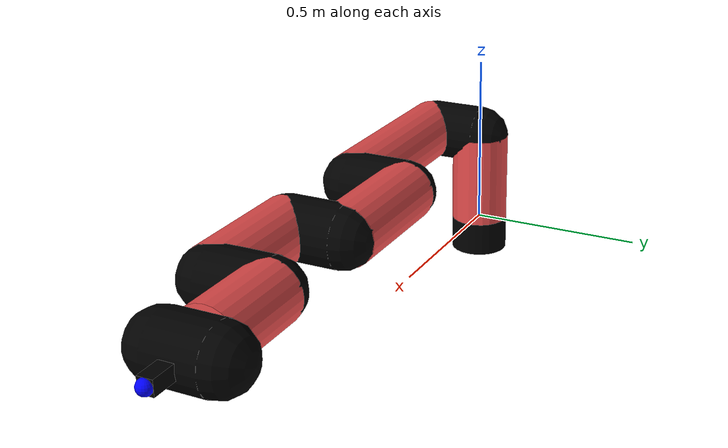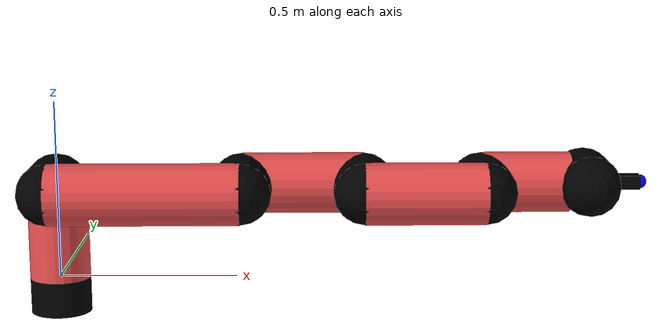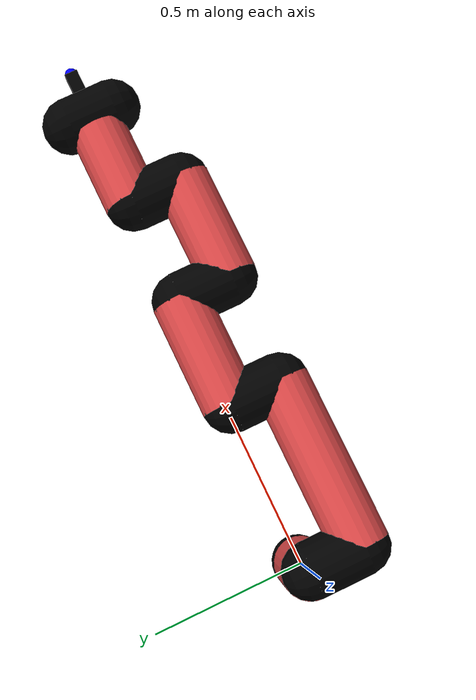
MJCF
<mujoco model="manipulator">
		<compiler angle="degree" coordinate="local" inertiafromgeom="auto" meshdir="meshes/"/>
		<option gravity="0 0 0" integrator="RK4" iterations="30" timestep="0.01"/>

		<default>
		<joint armature="1" limited="true" stiffness="10" damping="15" frictionloss="5.0"/>
		<geom conaffinity="1" condim="3" contype="1" friction=".5 .1 .1" margin="0.002"/>
		<motor ctrllimited="true"/>
		<position ctrllimited="true"/>
		</default>

		<asset>
		<texture builtin="gradient" height="100" rgb1="1.0 1.0 1.0" rgb2="1.0 1.0 1.0" type="skybox" width="100"/>
		<texture builtin="flat" height="32" name="arm_tex" rgb1="0.9 0.3 0.3" type="2d" width="32"/>
		<texture builtin="flat" height="32" name="gripper_tex" rgb1="0.0 0.0 0.0" type="cube" width="32"/>

		<material name="arm_mat" shininess="0.1" specular="0.1" texture="arm_tex"/>
		<material name="gripper_mat" shininess="1" specular="1" texture="gripper_tex"/>
		</asset>

		<worldbody>
		<light cutoff="45" diffuse=".8 .8 .8" dir="0 0.16 -1" directional="false" name="light" pos="0 -2.0 8.0" specular="0.3 0.3 0.3"/>

		<body name="base_link" pos="0 0 -0.1">
		<geom fromto="0 0 0 0 0 0.1" material="arm_mat" name="base_link" rgba="0.0 0.0 0.0 1" size="0.085" type="cylinder"/>
		</body>

		<body name="l1" pos="0 0 0">
<geom fromto="0 0 0 0 0 0.27" material="arm_mat" name="l1" rgba="0.9 0.3 0.3 1" size="0.085" type="cylinder"/>
<geom fromto="0 0 0.27 0 -0.16 0.27" material="arm_mat" name="l1_ex" rgba="0.0 0.0 0.0 1" size="0.085" type="capsule"/>
<joint axis="0 0 1" name="j1" pos="0 0 0" range="-90 90" damping="26.67" frictionloss="9.05"/>

<body name="l2" pos="0 -0.16 0.27">
<geom fromto="0 0 0 0.52 0 0" material="arm_mat" name="l2" rgba="0.9 0.3 0.3 1" size="0.085" type="cylinder"/>
<geom fromto="0.52 0 0 0.52 0.16 0" material="arm_mat" name="l2_ex" rgba="0.0 0.0 0.0 1" size="0.085" type="capsule"/>
<joint axis="0.0 1.0 0.0" name="j2" pos="0 0 0" range="-90 60" damping="29.96" frictionloss="8.82"/>

<body name="l3" pos="0.52 0.16 0">
<geom fromto="0 0 0 0.34 0 0" material="arm_mat" name="l3" rgba="0.9 0.3 0.3 1" size="0.085" type="cylinder"/>
<geom fromto="0.34 0 0 0.34 -0.16 0" material="arm_mat" name="l3_ex" rgba="0.0 0.0 0.0 1" size="0.085" type="capsule"/>
<joint axis="0.0 1.0 0.0" name="j3" pos="0 0 0" range="-30 60" damping="27.51" frictionloss="8.25"/>

<body name="l4" pos="0.34 -0.16 0">
<geom fromto="0 0 0 0.33 0 0" material="arm_mat" name="l4" rgba="0.9 0.3 0.3 1" size="0.085" type="cylinder"/>
<geom fromto="0.33 0 0 0.33 0.16 0" material="arm_mat" name="l4_ex" rgba="0.0 0.0 0.0 1" size="0.085" type="capsule"/>
<joint axis="0.0 1.0 0.0" name="j4" pos="0 0 0" range="-30 60" damping="36.61" frictionloss="11.66"/>

<body name="l5" pos="0.33 0.16 0">
<geom fromto="0 0 0 0.25 0 0" material="arm_mat" name="l5" rgba="0.9 0.3 0.3 1" size="0.085" type="cylinder"/>
<joint axis="0.0 1.0 0.0" name="j5" pos="0 0 0" range="-30 60" damping="35.79" frictionloss="7.7"/>

<body name="gripper" pos="0.25 0 0">
<geom fromto="0.05 -0.07 0 0.05 0.07 0" material="gripper_mat" name="gripper" rgba="0.0 0.0 0.0 1" size="0.085" type="capsule"/><joint axis="1 0 0" name="j6" pos="0 0 0" range="-90 90" damping="15" frictionloss="5.0"/><body name="finger" pos="0.1 0 0">
<geom fromto="0 0.0 0 0.1 0.0 0" material="gripper_mat" name="finger" rgba="0.0 0.0 0.0 1" size="0.020 0.06 0.06" type="box"/>
</body>
<site name="current" pos="0.2 0. 0.0" rgba="0. 0. 1.0 1" size="0.02" type="sphere"/>
</body>
</body>
</body>
</body>
</body>
</body>
</worldbody>
<actuator>
<motor ctrllimited="true" ctrlrange="-1.0 1.0" joint="j1" gear="96.74"/>
<motor ctrllimited="true" ctrlrange="-1.0 1.0" joint="j2" gear="71.59"/>
<motor ctrllimited="true" ctrlrange="-1.0 1.0" joint="j3" gear="75.49"/>
<motor ctrllimited="true" ctrlrange="-1.0 1.0" joint="j4" gear="79.8"/>
<motor ctrllimited="true" ctrlrange="-1.0 1.0" joint="j5" gear="83.31"/>
<motor ctrllimited="true" ctrlrange="-1.0 1.0" joint="j6" gear="80"/>
</actuator>
</mujoco>
